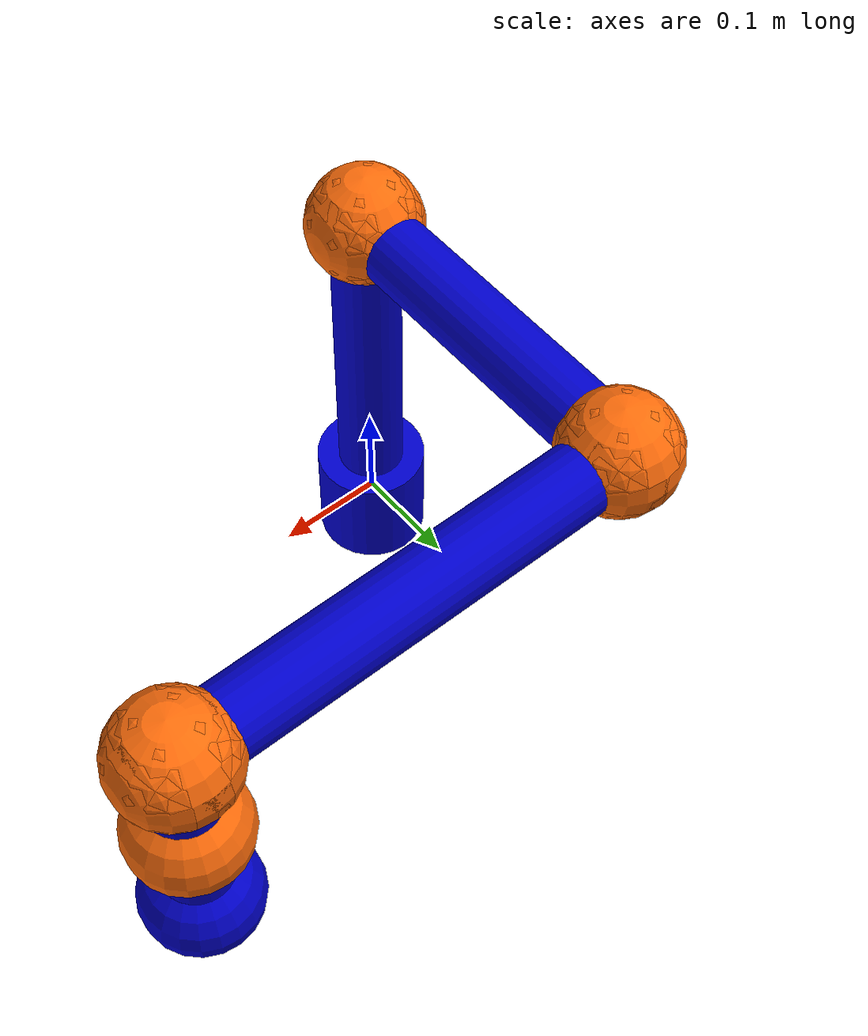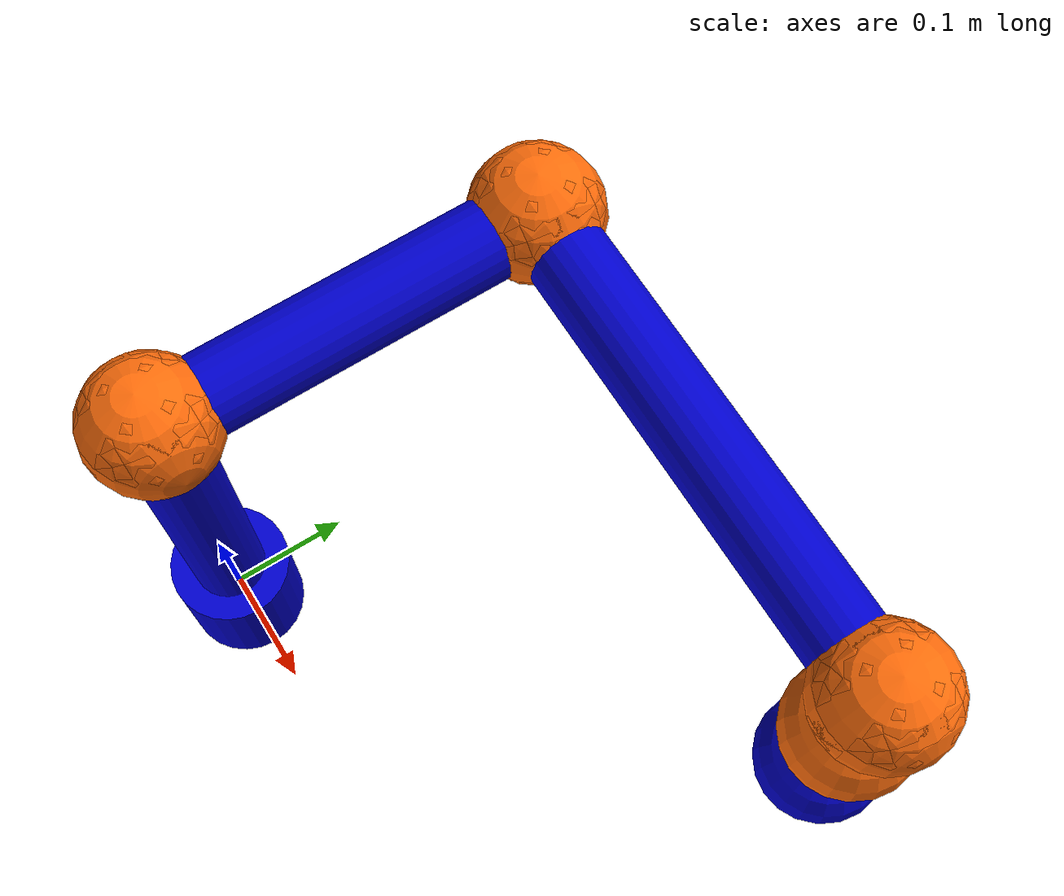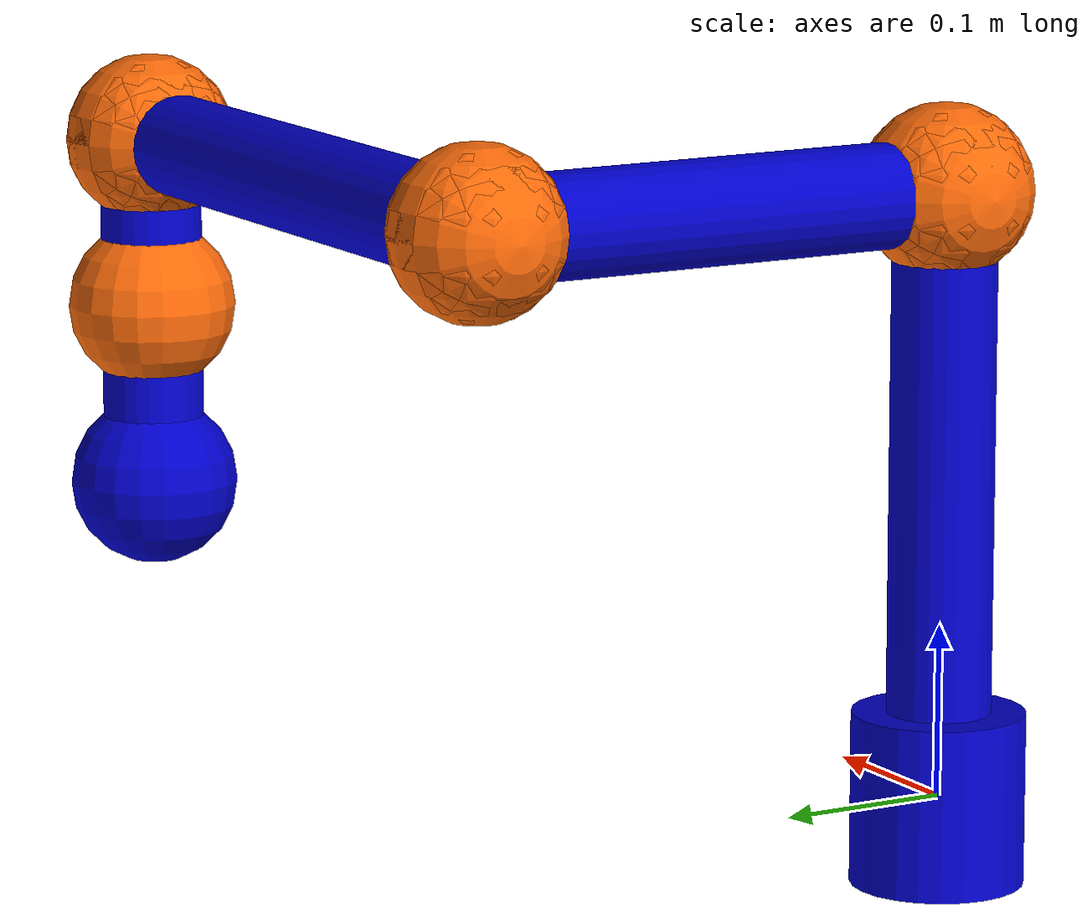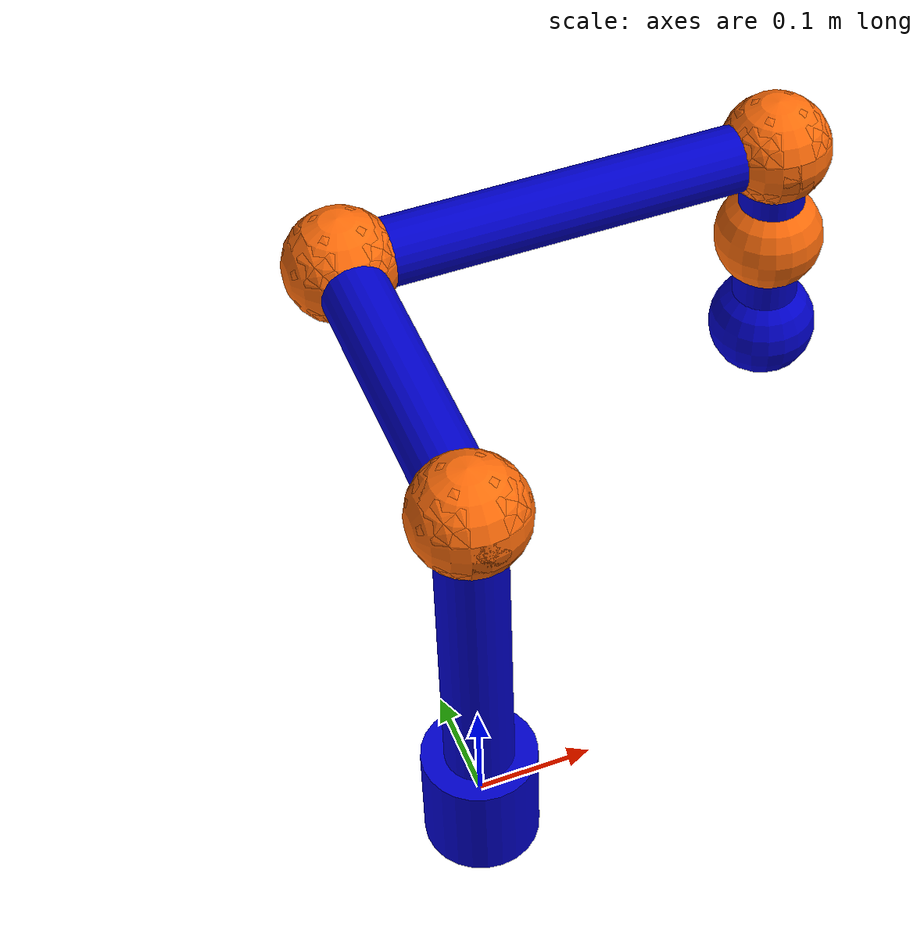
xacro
<?xml version="1.0"?>
<robot name="robot" xmlns:xacro="http://ros.org/wiki/xacro">

  <!-- Properties for materials -->
  <material name="blue">
    <color rgba="0 0 0.8 1"/>
  </material>
  <material name="orange">
    <color rgba="1.0 0.423529411765 0.0392156862745 1.0"/>
  </material>

  <!-- Connect to world -->
  <link name="world" />
  <joint name="world_joint" type="fixed">
    <parent link="world" />
    <child link="base_link" />
    <origin xyz="0.0 0.0 0.0" rpy="0.0 0.0 0.0" />
  </joint>

  <!-- Base link -->
  <link name="base_link">
    <visual>
      <geometry>
        <cylinder length="0.1" radius="0.05"/>
      </geometry>
      <material name="blue"/>
    </visual>
    <inertial>
      <origin xyz="0 0 0" rpy="0 0 0"/>
      <mass value="1"/>
      <inertia ixx="0.01" ixy="0" ixz="0" iyy="0.01" iyz="0" izz="0.01"/>
    </inertial>
  </link>

  <!-- Joint and link definitions -->
  <xacro:macro name="rotational_joint" params="prefix parent child xyz rpy length x y z r p yo">
    <joint name="${prefix}" type="revolute">
      <origin xyz="${xyz}" rpy="${rpy}"/>
      <parent link="${parent}"/>
      <child link="${child}"/>
      <axis xyz="0 0 1"/>
      <limit lower="-2.967" upper="2.967" effort="300" velocity="2.5"/>
    </joint>

    <link name="${child}">
      <visual name="joint">
        <origin xyz="0 0 0" rpy="0 0 0" />
        <geometry>
          <sphere radius="0.05"/>
        </geometry>
        <material name="orange"/>
      </visual>
      <visual name="link">
        <origin xyz="${x} ${y} ${z}" rpy="${r} ${p} ${yo}" />
        <geometry>
          <cylinder length="${length}" radius="0.03"/>
        </geometry>
        <material name="blue"/>
      </visual>
      <inertial>
        <origin xyz="${x} ${y} ${z}" rpy="${r} ${p} ${yo}" />
        <mass value="1"/>
        <inertia ixx="0.01" ixy="0" ixz="0" iyy="0.01" iyz="0" izz="0.01"/>
      </inertial>
    </link>
  </xacro:macro>

  <!-- Chain of joints and links -->
  <xacro:rotational_joint prefix="joint1" parent="base_link" child="link1" xyz="0 0 0.35" rpy="0 0 0"       length="0.333" x="0"    y="0"    z="-0.175" r="0"       p="0"      yo="0"/>
  <xacro:rotational_joint prefix="joint2" parent="link1"     child="link2" xyz="0 0 0"    rpy="0 -1.5708 0" length="0.3"   x="0"    y="0.15" z="0"      r="-1.5708" p="0"      yo="0"/>
  <xacro:rotational_joint prefix="joint3" parent="link2"     child="link3" xyz="0 0.3 0"  rpy="0 1.5708 0"  length="0.0"   x="0"    y="0"    z="0"      r="-1.5708" p="0"      yo="0"/>
  <xacro:rotational_joint prefix="joint4" parent="link3"     child="link4" xyz="0 0 0"    rpy="0 1.5708 0"  length="0.4"   x="0"    y="0"    z="0.2"    r="0"       p="0"      yo="0"/>
  <xacro:rotational_joint prefix="joint5" parent="link4"     child="link5" xyz="0 0 0.4"  rpy="0 -1.5708 0" length="0"     x="0"    y="0"    z="0"      r="0"       p="1.5708" yo="0"/>
  <xacro:rotational_joint prefix="joint6" parent="link5"     child="link6" xyz="0 0 0"    rpy="0 1.5708 0"  length="0.1"   x="0.05" y="0"    z="0"      r="0"       p="1.5708" yo="0"/>
  <xacro:rotational_joint prefix="joint7" parent="link6"     child="link7" xyz="0.1 0 0"  rpy="0 1.5708 0"  length="0.107" x="0"    y="0"    z="0.05035" r="0"      p="0"      yo="0"/>

  <!-- Joint connecting the last link and the end-effector -->
  <joint name="tool0_joint" type="fixed">
    <parent link="link7"/>
    <child link="tool0"/>
    <origin xyz="0 0 0.107" rpy="0 0 0"/>
  </joint>

  <!-- End-effector link -->
  <link name="tool0">
    <visual>
      <geometry>
        <sphere radius="0.05"/>
      </geometry>
      <material name="blue"/>
    </visual>
  </link>

  <ros2_control name="robot_mock_hardware" type="system">
    <hardware>
      <plugin>mock_components/GenericSystem</plugin>
    </hardware>

    <joint name="joint1">
      <command_interface name="effort"/>
      <state_interface name="position">
        <param name="initial_value">0.0</param>
      </state_interface>
      <state_interface name="velocity">
        <param name="initial_value">0.0</param>
      </state_interface>
      <state_interface name="effort"/>
    </joint>

    <joint name="joint2">
      <command_interface name="effort"/>
      <state_interface name="position">
        <param name="initial_value">0.0</param>
      </state_interface>
      <state_interface name="velocity">
        <param name="initial_value">0.0</param>
      </state_interface>
      <state_interface name="effort"/>
    </joint>

    <joint name="joint3">
      <command_interface name="effort"/>
      <state_interface name="position">
        <param name="initial_value">0.0</param>
      </state_interface>
      <state_interface name="velocity">
        <param name="initial_value">0.0</param>
      </state_interface>
      <state_interface name="effort"/>
    </joint>

    <joint name="joint4">
      <command_interface name="effort"/>
      <state_interface name="position">
        <param name="initial_value">0.0</param>
      </state_interface>
      <state_interface name="velocity">
        <param name="initial_value">0.0</param>
      </state_interface>
      <state_interface name="effort"/>
    </joint>

    <joint name="joint5">
      <command_interface name="effort"/>
      <state_interface name="position">
        <param name="initial_value">0.0</param>
      </state_interface>
      <state_interface name="velocity">
        <param name="initial_value">0.0</param>
      </state_interface>
      <state_interface name="effort"/>
    </joint>

    <joint name="joint6">
      <command_interface name="effort"/>
      <state_interface name="position">
        <param name="initial_value">0.0</param>
      </state_interface>
      <state_interface name="velocity">
        <param name="initial_value">0.0</param>
      </state_interface>
      <state_interface name="effort"/>
    </joint>

    <joint name="joint7">
      <command_interface name="effort"/>
      <state_interface name="position">
        <param name="initial_value">0.0</param>
      </state_interface>
      <state_interface name="velocity">
        <param name="initial_value">0.0</param>
      </state_interface>
      <state_interface name="effort"/>
    </joint>
  </ros2_control>

</robot>
